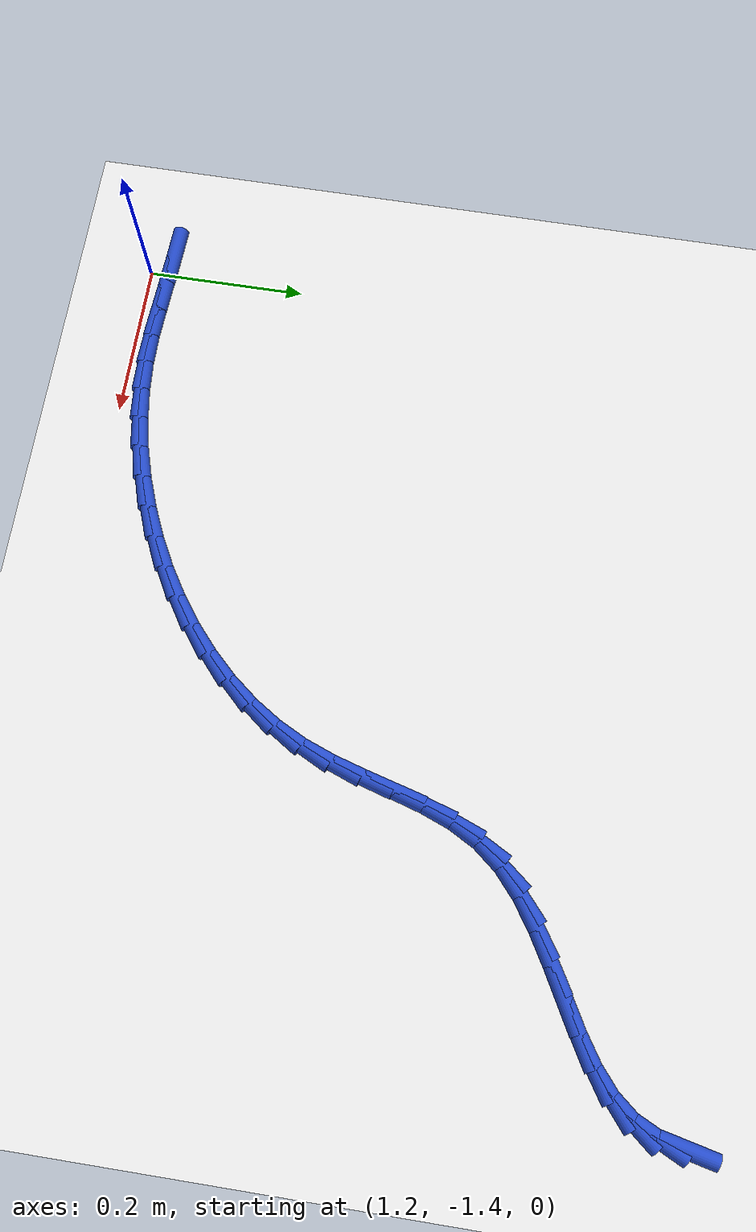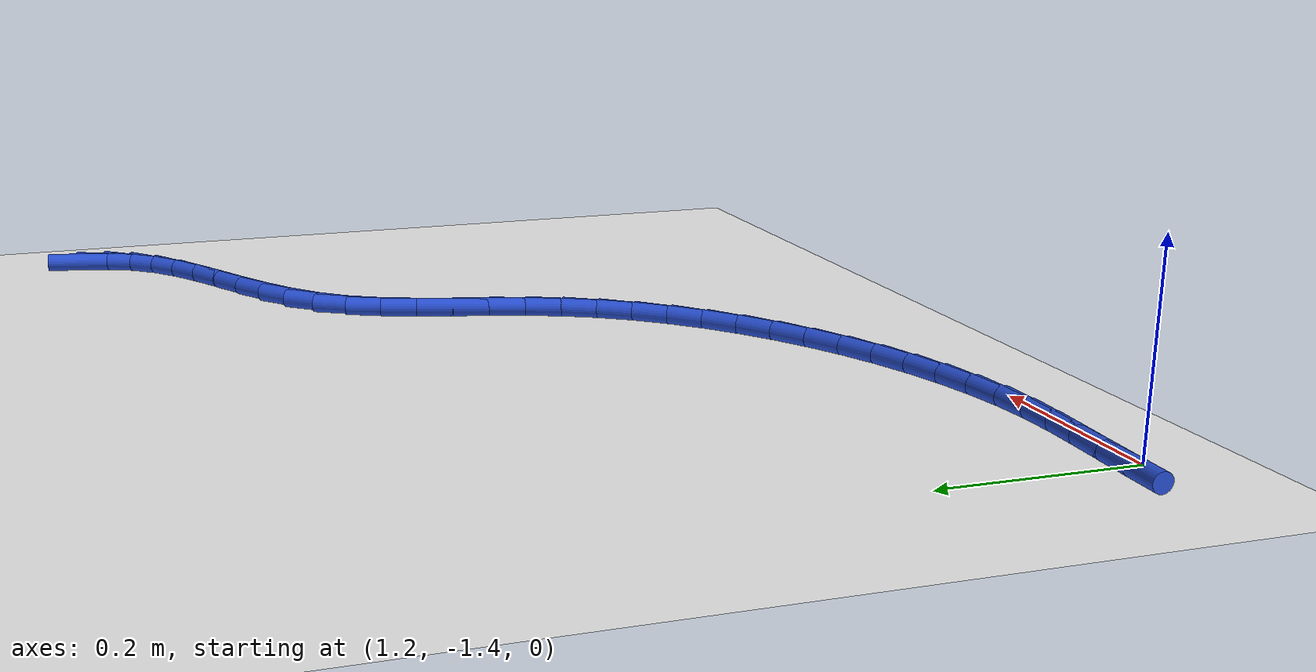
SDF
<sdf version="1.6">
 <world name="default">
  <model name="ground_plane">
   <static>1</static>
   <link name="link">
    <collision name="collision">
     <geometry><plane><normal>0 0 1</normal><size>100 100</size></plane></geometry>
     <surface><friction><ode><mu>100</mu><mu2>50</mu2></ode></friction></surface>
    </collision>
    <visual name="visual">
     <cast_shadows>0</cast_shadows>
     <geometry><plane><normal>0 0 1</normal><size>100 100</size></plane></geometry>
     <material>
      <script><uri>file://media/materials/scripts/gazebo.material</uri><name>Gazebo/WhiteGlow</name></script>
     </material>
    </visual>
   </link>
  </model>
  <model name="line">
   <link name="link_124">
    <pose>2.1720351762496923 -0.6050572017922605 0.01 0 1.57 1.3536203823759219</pose>
    <collision name="collision">
     <geometry><cylinder><radius>0.01</radius><length>0.08</length></cylinder></geometry>
    </collision>
    <visual name="visual">
     <material>
      <script><name>Gazebo/Blue</name><uri>file://media/materials/scripts/gazebo.material</uri></script>
     </material>
     <geometry><cylinder><radius>0.01</radius><length>0.08</length></cylinder></geometry>
    </visual>
   </link>
   <link name="link_125">
    <pose>2.165269887791608 -0.6357170892543642 0.01 0 1.57 1.1252783132221909</pose>
    <collision name="collision">
     <geometry><cylinder><radius>0.01</radius><length>0.08</length></cylinder></geometry>
    </collision>
    <visual name="visual">
     <material>
      <script><name>Gazebo/Blue</name><uri>file://media/materials/scripts/gazebo.material</uri></script>
     </material>
     <geometry><cylinder><radius>0.01</radius><length>0.08</length></cylinder></geometry>
    </visual>
   </link>
   <link name="link_126">
    <pose>2.151956110288573 -0.6635970600613529 0.01 0 1.57 0.8836403954446813</pose>
    <collision name="collision">
     <geometry><cylinder><radius>0.01</radius><length>0.08</length></cylinder></geometry>
    </collision>
    <visual name="visual">
     <material>
      <script><name>Gazebo/Blue</name><uri>file://media/materials/scripts/gazebo.material</uri></script>
     </material>
     <geometry><cylinder><radius>0.01</radius><length>0.08</length></cylinder></geometry>
    </visual>
   </link>
   <link name="link_127">
    <pose>2.131473277874456 -0.6885588972956553 0.01 0 1.57 0.6900669163670313</pose>
    <collision name="collision">
     <geometry><cylinder><radius>0.01</radius><length>0.08</length></cylinder></geometry>
    </collision>
    <visual name="visual">
     <material>
      <script><name>Gazebo/Blue</name><uri>file://media/materials/scripts/gazebo.material</uri></script>
     </material>
     <geometry><cylinder><radius>0.01</radius><length>0.08</length></cylinder></geometry>
    </visual>
   </link>
   <link name="link_128">
    <pose>2.10434149622942 -0.7109547887391928 0.01 0 1.57 0.5735595070384869</pose>
    <collision name="collision">
     <geometry><cylinder><radius>0.01</radius><length>0.08</length></cylinder></geometry>
    </collision>
    <visual name="visual">
     <material>
      <script><name>Gazebo/Blue</name><uri>file://media/materials/scripts/gazebo.material</uri></script>
     </material>
     <geometry><cylinder><radius>0.01</radius><length>0.08</length></cylinder></geometry>
    </visual>
   </link>
   <link name="link_129">
    <pose>2.072293122344893 -0.7316581008970205 0.01 0 1.57 0.5150629492354584</pose>
    <collision name="collision">
     <geometry><cylinder><radius>0.01</radius><length>0.08</length></cylinder></geometry>
    </collision>
    <visual name="visual">
     <material>
      <script><name>Gazebo/Blue</name><uri>file://media/materials/scripts/gazebo.material</uri></script>
     </material>
     <geometry><cylinder><radius>0.01</radius><length>0.08</length></cylinder></geometry>
    </visual>
   </link>
   <link name="link_130">
    <pose>2.0371191786148315 -0.7515674220737467 0.01 0 1.57 0.5014594369322178</pose>
    <collision name="collision">
     <geometry><cylinder><radius>0.01</radius><length>0.08</length></cylinder></geometry>
    </collision>
    <visual name="visual">
     <material>
      <script><name>Gazebo/Blue</name><uri>file://media/materials/scripts/gazebo.material</uri></script>
     </material>
     <geometry><cylinder><radius>0.01</radius><length>0.08</length></cylinder></geometry>
    </visual>
   </link>
   <link name="link_131">
    <pose>2.0006106874331913 -0.7715813405739794 0.01 0 1.57 0.5278004237679216</pose>
    <collision name="collision">
     <geometry><cylinder><radius>0.01</radius><length>0.08</length></cylinder></geometry>
    </collision>
    <visual name="visual">
     <material>
      <script><name>Gazebo/Blue</name><uri>file://media/materials/scripts/gazebo.material</uri></script>
     </material>
     <geometry><cylinder><radius>0.01</radius><length>0.08</length></cylinder></geometry>
    </visual>
   </link>
   <link name="link_132">
    <pose>1.9645586711939271 -0.7925984447023278 0.01 0 1.57 0.5957959000685129</pose>
    <collision name="collision">
     <geometry><cylinder><radius>0.01</radius><length>0.08</length></cylinder></geometry>
    </collision>
    <visual name="visual">
     <material>
      <script><name>Gazebo/Blue</name><uri>file://media/materials/scripts/gazebo.material</uri></script>
     </material>
     <geometry><cylinder><radius>0.01</radius><length>0.08</length></cylinder></geometry>
    </visual>
   </link>
   <link name="link_133">
    <pose>1.9307541522909966 -0.815517322763399 0.01 0 1.57 0.7125931015024484</pose>
    <collision name="collision">
     <geometry><cylinder><radius>0.01</radius><length>0.08</length></cylinder></geometry>
    </collision>
    <visual name="visual">
     <material>
      <script><name>Gazebo/Blue</name><uri>file://media/materials/scripts/gazebo.material</uri></script>
     </material>
     <geometry><cylinder><radius>0.01</radius><length>0.08</length></cylinder></geometry>
    </visual>
   </link>
   <link name="link_134">
    <pose>1.9009881531183543 -0.8412365630618015 0.01 0 1.57 0.8860979342546759</pose>
    <collision name="collision">
     <geometry><cylinder><radius>0.01</radius><length>0.08</length></cylinder></geometry>
    </collision>
    <visual name="visual">
     <material>
      <script><name>Gazebo/Blue</name><uri>file://media/materials/scripts/gazebo.material</uri></script>
     </material>
     <geometry><cylinder><radius>0.01</radius><length>0.08</length></cylinder></geometry>
    </visual>
   </link>
   <link name="link_135">
    <pose>1.8769941372575836 -0.8706243592795784 0.01 0 1.57 1.0703993403243819</pose>
    <collision name="collision">
     <geometry><cylinder><radius>0.01</radius><length>0.08</length></cylinder></geometry>
    </collision>
    <visual name="visual">
     <material>
      <script><name>Gazebo/Blue</name><uri>file://media/materials/scripts/gazebo.material</uri></script>
     </material>
     <geometry><cylinder><radius>0.01</radius><length>0.08</length></cylinder></geometry>
    </visual>
   </link>
   <link name="link_136">
    <pose>1.8589055842355633 -0.9037040142914782 0.01 0 1.57 1.2029514020458636</pose>
    <collision name="collision">
     <geometry><cylinder><radius>0.01</radius><length>0.08</length></cylinder></geometry>
    </collision>
    <visual name="visual">
     <material>
      <script><name>Gazebo/Blue</name><uri>file://media/materials/scripts/gazebo.material</uri></script>
     </material>
     <geometry><cylinder><radius>0.01</radius><length>0.08</length></cylinder></geometry>
    </visual>
   </link>
   <link name="link_137">
    <pose>1.8450856527926696 -0.9395639918067675 0.01 0 1.57 1.2799290928923177</pose>
    <collision name="collision">
     <geometry><cylinder><radius>0.01</radius><length>0.08</length></cylinder></geometry>
    </collision>
    <visual name="visual">
     <material>
      <script><name>Gazebo/Blue</name><uri>file://media/materials/scripts/gazebo.material</uri></script>
     </material>
     <geometry><cylinder><radius>0.01</radius><length>0.08</length></cylinder></geometry>
    </visual>
   </link>
   <link name="link_138">
    <pose>1.8338057661717242 -0.9772443135028347 0.01 0 1.57 1.3055752548535384</pose>
    <collision name="collision">
     <geometry><cylinder><radius>0.01</radius><length>0.08</length></cylinder></geometry>
    </collision>
    <visual name="visual">
     <material>
      <script><name>Gazebo/Blue</name><uri>file://media/materials/scripts/gazebo.material</uri></script>
     </material>
     <geometry><cylinder><radius>0.01</radius><length>0.08</length></cylinder></geometry>
    </visual>
   </link>
   <link name="link_139">
    <pose>1.8233373476155512 -1.0157850010570657 0.01 0 1.57 1.2828466066888002</pose>
    <collision name="collision">
     <geometry><cylinder><radius>0.01</radius><length>0.08</length></cylinder></geometry>
    </collision>
    <visual name="visual">
     <material>
      <script><name>Gazebo/Blue</name><uri>file://media/materials/scripts/gazebo.material</uri></script>
     </material>
     <geometry><cylinder><radius>0.01</radius><length>0.08</length></cylinder></geometry>
    </visual>
   </link>
   <link name="link_140">
    <pose>1.8119518203669738 -1.0542260761468492 0.01 0 1.57 1.2117338314392252</pose>
    <collision name="collision">
     <geometry><cylinder><radius>0.01</radius><length>0.08</length></cylinder></geometry>
    </collision>
    <visual name="visual">
     <material>
      <script><name>Gazebo/Blue</name><uri>file://media/materials/scripts/gazebo.material</uri></script>
     </material>
     <geometry><cylinder><radius>0.01</radius><length>0.08</length></cylinder></geometry>
    </visual>
   </link>
   <link name="link_141">
    <pose>1.7979212224714676 -1.0916078189061338 0.01 0 1.57 1.1041742955913971</pose>
    <collision name="collision">
     <geometry><cylinder><radius>0.01</radius><length>0.08</length></cylinder></geometry>
    </collision>
    <visual name="visual">
     <material>
      <script><name>Gazebo/Blue</name><uri>file://media/materials/scripts/gazebo.material</uri></script>
     </material>
     <geometry><cylinder><radius>0.01</radius><length>0.08</length></cylinder></geometry>
    </visual>
   </link>
   <link name="link_142">
    <pose>1.7800049900485566 -1.1271754064869153 0.01 0 1.57 0.9973926744620096</pose>
    <collision name="collision">
     <geometry><cylinder><radius>0.01</radius><length>0.08</length></cylinder></geometry>
    </collision>
    <visual name="visual">
     <material>
      <script><name>Gazebo/Blue</name><uri>file://media/materials/scripts/gazebo.material</uri></script>
     </material>
     <geometry><cylinder><radius>0.01</radius><length>0.08</length></cylinder></geometry>
    </visual>
   </link>
   <link name="link_143">
    <pose>1.7583251867727538 -1.1607468503168885 0.01 0 1.57 0.898171456102067</pose>
    <collision name="collision">
     <geometry><cylinder><radius>0.01</radius><length>0.08</length></cylinder></geometry>
    </collision>
    <visual name="visual">
     <material>
      <script><name>Gazebo/Blue</name><uri>file://media/materials/scripts/gazebo.material</uri></script>
     </material>
     <geometry><cylinder><radius>0.01</radius><length>0.08</length></cylinder></geometry>
    </visual>
   </link>
   <link name="link_144">
    <pose>1.7332401740946948 -1.192239498920623 0.01 0 1.57 0.806266650258836</pose>
    <collision name="collision">
     <geometry><cylinder><radius>0.01</radius><length>0.08</length></cylinder></geometry>
    </collision>
    <visual name="visual">
     <material>
      <script><name>Gazebo/Blue</name><uri>file://media/materials/scripts/gazebo.material</uri></script>
     </material>
     <geometry><cylinder><radius>0.01</radius><length>0.08</length></cylinder></geometry>
    </visual>
   </link>
   <link name="link_145">
    <pose>1.7051083134650147 -1.2215707008226906 0.01 0 1.57 0.7210181209614073</pose>
    <collision name="collision">
     <geometry><cylinder><radius>0.01</radius><length>0.08</length></cylinder></geometry>
    </collision>
    <visual name="visual">
     <material>
      <script><name>Gazebo/Blue</name><uri>file://media/materials/scripts/gazebo.material</uri></script>
     </material>
     <geometry><cylinder><radius>0.01</radius><length>0.08</length></cylinder></geometry>
    </visual>
   </link>
   <link name="link_146">
    <pose>1.6742879663343493 -1.2486578045476586 0.01 0 1.57 0.641519313219216</pose>
    <collision name="collision">
     <geometry><cylinder><radius>0.01</radius><length>0.08</length></cylinder></geometry>
    </collision>
    <visual name="visual">
     <material>
      <script><name>Gazebo/Blue</name><uri>file://media/materials/scripts/gazebo.material</uri></script>
     </material>
     <geometry><cylinder><radius>0.01</radius><length>0.08</length></cylinder></geometry>
    </visual>
   </link>
   <link name="link_147">
    <pose>1.6411374941533339 -1.2734181586200986 0.01 0 1.57 0.5667381193527892</pose>
    <collision name="collision">
     <geometry><cylinder><radius>0.01</radius><length>0.08</length></cylinder></geometry>
    </collision>
    <visual name="visual">
     <material>
      <script><name>Gazebo/Blue</name><uri>file://media/materials/scripts/gazebo.material</uri></script>
     </material>
     <geometry><cylinder><radius>0.01</radius><length>0.08</length></cylinder></geometry>
    </visual>
   </link>
   <link name="link_148">
    <pose>1.606015258372604 -1.2957691115645802 0.01 0 1.57 0.4955895658524376</pose>
    <collision name="collision">
     <geometry><cylinder><radius>0.01</radius><length>0.08</length></cylinder></geometry>
    </collision>
    <visual name="visual">
     <material>
      <script><name>Gazebo/Blue</name><uri>file://media/materials/scripts/gazebo.material</uri></script>
     </material>
     <geometry><cylinder><radius>0.01</radius><length>0.08</length></cylinder></geometry>
    </visual>
   </link>
   <link name="link_149">
    <pose>1.5692796204427952 -1.315628011905674 0.01 0 1.57 0.42697006583724467</pose>
    <collision name="collision">
     <geometry><cylinder><radius>0.01</radius><length>0.08</length></cylinder></geometry>
    </collision>
    <visual name="visual">
     <material>
      <script><name>Gazebo/Blue</name><uri>file://media/materials/scripts/gazebo.material</uri></script>
     </material>
     <geometry><cylinder><radius>0.01</radius><length>0.08</length></cylinder></geometry>
    </visual>
   </link>
   <link name="link_150">
    <pose>1.5312889418145428 -1.3329122081679496 0.01 0 1.57 0.3597641136500781</pose>
    <collision name="collision">
     <geometry><cylinder><radius>0.01</radius><length>0.08</length></cylinder></geometry>
    </collision>
    <visual name="visual">
     <material>
      <script><name>Gazebo/Blue</name><uri>file://media/materials/scripts/gazebo.material</uri></script>
     </material>
     <geometry><cylinder><radius>0.01</radius><length>0.08</length></cylinder></geometry>
    </visual>
   </link>
   <link name="link_151">
    <pose>1.4924015839384808 -1.3475390488759773 0.01 0 1.57 0.2928321972565283</pose>
    <collision name="collision">
     <geometry><cylinder><radius>0.01</radius><length>0.08</length></cylinder></geometry>
    </collision>
    <visual name="visual">
     <material>
      <script><name>Gazebo/Blue</name><uri>file://media/materials/scripts/gazebo.material</uri></script>
     </material>
     <geometry><cylinder><radius>0.01</radius><length>0.08</length></cylinder></geometry>
    </visual>
   </link>
   <link name="link_152">
    <pose>1.4529759082652471 -1.3594258825543268 0.01 0 1.57 0.22498612008538077</pose>
    <collision name="collision">
     <geometry><cylinder><radius>0.01</radius><length>0.08</length></cylinder></geometry>
    </collision>
    <visual name="visual">
     <material>
      <script><name>Gazebo/Blue</name><uri>file://media/materials/scripts/gazebo.material</uri></script>
     </material>
     <geometry><cylinder><radius>0.01</radius><length>0.08</length></cylinder></geometry>
    </visual>
   </link>
   <link name="link_153">
    <pose>1.4133702762454763 -1.368490057727568 0.01 0 1.57 0.1549561618014813</pose>
    <collision name="collision">
     <geometry><cylinder><radius>0.01</radius><length>0.08</length></cylinder></geometry>
    </collision>
    <visual name="visual">
     <material>
      <script><name>Gazebo/Blue</name><uri>file://media/materials/scripts/gazebo.material</uri></script>
     </material>
     <geometry><cylinder><radius>0.01</radius><length>0.08</length></cylinder></geometry>
    </visual>
   </link>
   <link name="link_154">
    <pose>1.3739430493298035 -1.374648922920272 0.01 0 1.57 0.08139728968517908</pose>
    <collision name="collision">
     <geometry><cylinder><radius>0.01</radius><length>0.08</length></cylinder></geometry>
    </collision>
    <visual name="visual">
     <material>
      <script><name>Gazebo/Blue</name><uri>file://media/materials/scripts/gazebo.material</uri></script>
     </material>
     <geometry><cylinder><radius>0.01</radius><length>0.08</length></cylinder></geometry>
    </visual>
   </link>
   <link name="link_155">
    <pose>1.335050703737667 -1.37782166455769 0.01 0 1.57 0.011180247118747854</pose>
    <collision name="collision">
     <geometry><cylinder><radius>0.01</radius><length>0.08</length></cylinder></geometry>
    </collision>
    <visual name="visual">
     <material>
      <script><name>Gazebo/Blue</name><uri>file://media/materials/scripts/gazebo.material</uri></script>
     </material>
     <geometry><cylinder><radius>0.01</radius><length>0.08</length></cylinder></geometry>
    </visual>
   </link>
   <link name="link_156">
    <pose>1.2967186279889036 -1.3782502444944855 0.01 0 1.57 -0.03597085583094913</pose>
    <collision name="collision">
     <geometry><cylinder><radius>0.01</radius><length>0.08</length></cylinder></geometry>
    </collision>
    <visual name="visual">
     <material>
      <script><name>Gazebo/Blue</name><uri>file://media/materials/scripts/gazebo.material</uri></script>
     </material>
     <geometry><cylinder><radius>0.01</radius><length>0.08</length></cylinder></geometry>
    </visual>
   </link>
   <link name="link_157">
    <pose>1.2582646461494655 -1.3768664249636204 0.01 0 1.57 -0.05523471477043077</pose>
    <collision name="collision">
     <geometry><cylinder><radius>0.01</radius><length>0.08</length></cylinder></geometry>
    </collision>
    <visual name="visual">
     <material>
      <script><name>Gazebo/Blue</name><uri>file://media/materials/scripts/gazebo.material</uri></script>
     </material>
     <geometry><cylinder><radius>0.01</radius><length>0.08</length></cylinder></geometry>
    </visual>
   </link>
   <link name="link_158">
    <pose>1.2189154909465394 -1.3746907726025175 0.01 0 1.57 -0.04889128946118276</pose>
    <collision name="collision">
     <geometry><cylinder><radius>0.01</radius><length>0.08</length></cylinder></geometry>
    </collision>
    <visual name="visual">
     <material>
      <script><name>Gazebo/Blue</name><uri>file://media/materials/scripts/gazebo.material</uri></script>
     </material>
     <geometry><cylinder><radius>0.01</radius><length>0.08</length></cylinder></geometry>
    </visual>
   </link>
   <link name="link_159">
    <pose>1.1779516795309986 -1.3726864017318345 0.01 0 1.57 -0.03955507087053622</pose>
    <collision name="collision">
     <geometry><cylinder><radius>0.01</radius><length>0.08</length></cylinder></geometry>
    </collision>
    <visual name="visual">
     <material>
      <script><name>Gazebo/Blue</name><uri>file://media/materials/scripts/gazebo.material</uri></script>
     </material>
     <geometry><cylinder><radius>0.01</radius><length>0.08</length></cylinder></geometry>
    </visual>
   </link>
  </model>
 </world>
</sdf>
